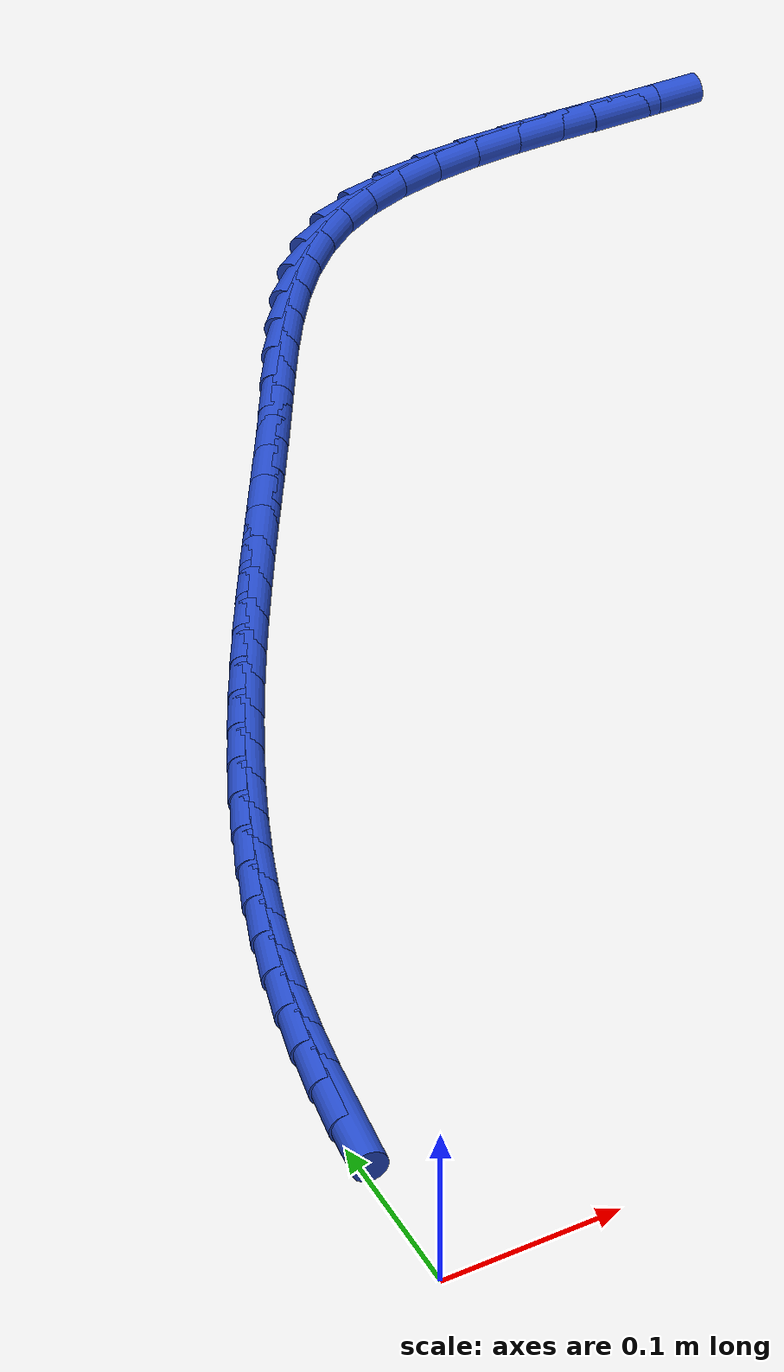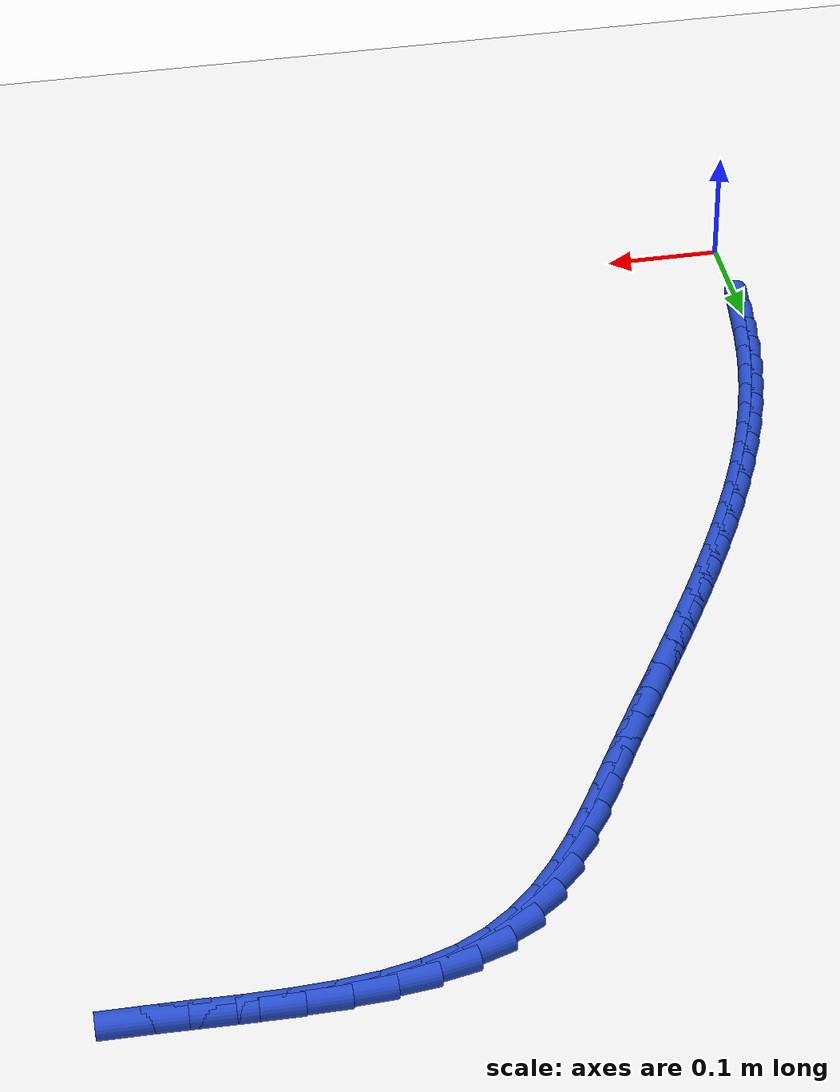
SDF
<sdf version="1.6">
 <world name="default">
  <model name="ground_plane">
   <static>1</static>
   <link name="link">
    <collision name="collision">
     <geometry><plane><normal>0 0 1</normal><size>100 100</size></plane></geometry>
     <surface><friction><ode><mu>100</mu><mu2>50</mu2></ode></friction></surface>
    </collision>
    <visual name="visual">
     <cast_shadows>0</cast_shadows>
     <geometry><plane><normal>0 0 1</normal><size>100 100</size></plane></geometry>
     <material>
      <script><uri>file://media/materials/scripts/gazebo.material</uri><name>Gazebo/WhiteGlow</name></script>
     </material>
    </visual>
   </link>
  </model>
  <model name="line">
   <link name="link_4">
    <pose>0.005877964101562978 0.1147266940156338 0.01 0 1.57 1.4434871327278553</pose>
    <collision name="collision">
     <geometry><cylinder><radius>0.01</radius><length>0.08</length></cylinder></geometry>
    </collision>
    <visual name="visual">
     <material>
      <script><name>Gazebo/Blue</name><uri>file://media/materials/scripts/gazebo.material</uri></script>
     </material>
     <geometry><cylinder><radius>0.01</radius><length>0.08</length></cylinder></geometry>
    </visual>
   </link>
   <link name="link_5">
    <pose>0.009503299858063974 0.14304930302059277 0.01 0 1.57 1.4093212751961135</pose>
    <collision name="collision">
     <geometry><cylinder><radius>0.01</radius><length>0.08</length></cylinder></geometry>
    </collision>
    <visual name="visual">
     <material>
      <script><name>Gazebo/Blue</name><uri>file://media/materials/scripts/gazebo.material</uri></script>
     </material>
     <geometry><cylinder><radius>0.01</radius><length>0.08</length></cylinder></geometry>
    </visual>
   </link>
   <link name="link_6">
    <pose>0.0140723691933614 0.17109876633553636 0.01 0 1.57 1.3730125523633765</pose>
    <collision name="collision">
     <geometry><cylinder><radius>0.01</radius><length>0.08</length></cylinder></geometry>
    </collision>
    <visual name="visual">
     <material>
      <script><name>Gazebo/Blue</name><uri>file://media/materials/scripts/gazebo.material</uri></script>
     </material>
     <geometry><cylinder><radius>0.01</radius><length>0.08</length></cylinder></geometry>
    </visual>
   </link>
   <link name="link_7">
    <pose>0.01962586995063141 0.19881032401524673 0.01 0 1.57 1.3344554220983544</pose>
    <collision name="collision">
     <geometry><cylinder><radius>0.01</radius><length>0.08</length></cylinder></geometry>
    </collision>
    <visual name="visual">
     <material>
      <script><name>Gazebo/Blue</name><uri>file://media/materials/scripts/gazebo.material</uri></script>
     </material>
     <geometry><cylinder><radius>0.01</radius><length>0.08</length></cylinder></geometry>
    </visual>
   </link>
   <link name="link_8">
    <pose>0.026203292380306654 0.22612044573771287 0.01 0 1.57 1.2954669962316583</pose>
    <collision name="collision">
     <geometry><cylinder><radius>0.01</radius><length>0.08</length></cylinder></geometry>
    </collision>
    <visual name="visual">
     <material>
      <script><name>Gazebo/Blue</name><uri>file://media/materials/scripts/gazebo.material</uri></script>
     </material>
     <geometry><cylinder><radius>0.01</radius><length>0.08</length></cylinder></geometry>
    </visual>
   </link>
   <link name="link_9">
    <pose>0.03379988727751685 0.2530106477093877 0.01 0 1.57 1.2586226104264027</pose>
    <collision name="collision">
     <geometry><cylinder><radius>0.01</radius><length>0.08</length></cylinder></geometry>
    </collision>
    <visual name="visual">
     <material>
      <script><name>Gazebo/Blue</name><uri>file://media/materials/scripts/gazebo.material</uri></script>
     </material>
     <geometry><cylinder><radius>0.01</radius><length>0.08</length></cylinder></geometry>
    </visual>
   </link>
   <link name="link_10">
    <pose>0.04235495488791489 0.2795194174082357 0.01 0 1.57 1.224285861590087</pose>
    <collision name="collision">
     <geometry><cylinder><radius>0.01</radius><length>0.08</length></cylinder></geometry>
    </collision>
    <visual name="visual">
     <material>
      <script><name>Gazebo/Blue</name><uri>file://media/materials/scripts/gazebo.material</uri></script>
     </material>
     <geometry><cylinder><radius>0.01</radius><length>0.08</length></cylinder></geometry>
    </visual>
   </link>
   <link name="link_11">
    <pose>0.05180420507439614 0.30568889819536876 0.01 0 1.57 1.1926175697821355</pose>
    <collision name="collision">
     <geometry><cylinder><radius>0.01</radius><length>0.08</length></cylinder></geometry>
    </collision>
    <visual name="visual">
     <material>
      <script><name>Gazebo/Blue</name><uri>file://media/materials/scripts/gazebo.material</uri></script>
     </material>
     <geometry><cylinder><radius>0.01</radius><length>0.08</length></cylinder></geometry>
    </visual>
   </link>
   <link name="link_12">
    <pose>0.06208334769985592 0.33156123343189836 0.01 0 1.57 1.1637336648102972</pose>
    <collision name="collision">
     <geometry><cylinder><radius>0.01</radius><length>0.08</length></cylinder></geometry>
    </collision>
    <visual name="visual">
     <material>
      <script><name>Gazebo/Blue</name><uri>file://media/materials/scripts/gazebo.material</uri></script>
     </material>
     <geometry><cylinder><radius>0.01</radius><length>0.08</length></cylinder></geometry>
    </visual>
   </link>
   <link name="link_13">
    <pose>0.07312809262718964 0.35717856647893653 0.01 0 1.57 1.1377100550163985</pose>
    <collision name="collision">
     <geometry><cylinder><radius>0.01</radius><length>0.08</length></cylinder></geometry>
    </collision>
    <visual name="visual">
     <material>
      <script><name>Gazebo/Blue</name><uri>file://media/materials/scripts/gazebo.material</uri></script>
     </material>
     <geometry><cylinder><radius>0.01</radius><length>0.08</length></cylinder></geometry>
    </visual>
   </link>
   <link name="link_14">
    <pose>0.08487414971929266 0.3825830406975948 0.01 0 1.57 1.1145884544039364</pose>
    <collision name="collision">
     <geometry><cylinder><radius>0.01</radius><length>0.08</length></cylinder></geometry>
    </collision>
    <visual name="visual">
     <material>
      <script><name>Gazebo/Blue</name><uri>file://media/materials/scripts/gazebo.material</uri></script>
     </material>
     <geometry><cylinder><radius>0.01</radius><length>0.08</length></cylinder></geometry>
    </visual>
   </link>
   <link name="link_15">
    <pose>0.09725722883906032 0.4078167994489851 0.01 0 1.57 1.09438252692629</pose>
    <collision name="collision">
     <geometry><cylinder><radius>0.01</radius><length>0.08</length></cylinder></geometry>
    </collision>
    <visual name="visual">
     <material>
      <script><name>Gazebo/Blue</name><uri>file://media/materials/scripts/gazebo.material</uri></script>
     </material>
     <geometry><cylinder><radius>0.01</radius><length>0.08</length></cylinder></geometry>
    </visual>
   </link>
   <link name="link_16">
    <pose>0.11021303984938798 0.43292198609421884 0.01 0 1.57 1.0770838513922167</pose>
    <collision name="collision">
     <geometry><cylinder><radius>0.01</radius><length>0.08</length></cylinder></geometry>
    </collision>
    <visual name="visual">
     <material>
      <script><name>Gazebo/Blue</name><uri>file://media/materials/scripts/gazebo.material</uri></script>
     </material>
     <geometry><cylinder><radius>0.01</radius><length>0.08</length></cylinder></geometry>
    </visual>
   </link>
   <link name="link_17">
    <pose>0.12367729261317098 0.45794074399440804 0.01 0 1.57 1.0626673634009953</pose>
    <collision name="collision">
     <geometry><cylinder><radius>0.01</radius><length>0.08</length></cylinder></geometry>
    </collision>
    <visual name="visual">
     <material>
      <script><name>Gazebo/Blue</name><uri>file://media/materials/scripts/gazebo.material</uri></script>
     </material>
     <geometry><cylinder><radius>0.01</radius><length>0.08</length></cylinder></geometry>
    </visual>
   </link>
   <link name="link_18">
    <pose>0.13758569699330478 0.48291521651066444 0.01 0 1.57 1.051096067980115</pose>
    <collision name="collision">
     <geometry><cylinder><radius>0.01</radius><length>0.08</length></cylinder></geometry>
    </collision>
    <visual name="visual">
     <material>
      <script><name>Gazebo/Blue</name><uri>file://media/materials/scripts/gazebo.material</uri></script>
     </material>
     <geometry><cylinder><radius>0.01</radius><length>0.08</length></cylinder></geometry>
    </visual>
   </link>
   <link name="link_19">
    <pose>0.1518739628526846 0.5078875470040995 0.01 0 1.57 1.0423249261464813</pose>
    <collision name="collision">
     <geometry><cylinder><radius>0.01</radius><length>0.08</length></cylinder></geometry>
    </collision>
    <visual name="visual">
     <material>
      <script><name>Gazebo/Blue</name><uri>file://media/materials/scripts/gazebo.material</uri></script>
     </material>
     <geometry><cylinder><radius>0.01</radius><length>0.08</length></cylinder></geometry>
    </visual>
   </link>
   <link name="link_20">
    <pose>0.16647780005420595 0.5328998788358253 0.01 0 1.57 1.0363038976046708</pose>
    <collision name="collision">
     <geometry><cylinder><radius>0.01</radius><length>0.08</length></cylinder></geometry>
    </collision>
    <visual name="visual">
     <material>
      <script><name>Gazebo/Blue</name><uri>file://media/materials/scripts/gazebo.material</uri></script>
     </material>
     <geometry><cylinder><radius>0.01</radius><length>0.08</length></cylinder></geometry>
    </visual>
   </link>
   <link name="link_21">
    <pose>0.1813329184607641 0.5579943553669534 0.01 0 1.57 1.0329801731039916</pose>
    <collision name="collision">
     <geometry><cylinder><radius>0.01</radius><length>0.08</length></cylinder></geometry>
    </collision>
    <visual name="visual">
     <material>
      <script><name>Gazebo/Blue</name><uri>file://media/materials/scripts/gazebo.material</uri></script>
     </material>
     <geometry><cylinder><radius>0.01</radius><length>0.08</length></cylinder></geometry>
    </visual>
   </link>
   <link name="link_22">
    <pose>0.19637502793525435 0.5832131199585954 0.01 0 1.57 1.032299659222334</pose>
    <collision name="collision">
     <geometry><cylinder><radius>0.01</radius><length>0.08</length></cylinder></geometry>
    </collision>
    <visual name="visual">
     <material>
      <script><name>Gazebo/Blue</name><uri>file://media/materials/scripts/gazebo.material</uri></script>
     </material>
     <geometry><cylinder><radius>0.01</radius><length>0.08</length></cylinder></geometry>
    </visual>
   </link>
   <link name="link_23">
    <pose>0.21153983834057216 0.6085983159718632 0.01 0 1.57 1.0342077918414312</pose>
    <collision name="collision">
     <geometry><cylinder><radius>0.01</radius><length>0.08</length></cylinder></geometry>
    </collision>
    <visual name="visual">
     <material>
      <script><name>Gazebo/Blue</name><uri>file://media/materials/scripts/gazebo.material</uri></script>
     </material>
     <geometry><cylinder><radius>0.01</radius><length>0.08</length></cylinder></geometry>
    </visual>
   </link>
   <link name="link_24">
    <pose>0.2267630595396129 0.6341920867678685 0.01 0 1.57 1.0386497581470888</pose>
    <collision name="collision">
     <geometry><cylinder><radius>0.01</radius><length>0.08</length></cylinder></geometry>
    </collision>
    <visual name="visual">
     <material>
      <script><name>Gazebo/Blue</name><uri>file://media/materials/scripts/gazebo.material</uri></script>
     </material>
     <geometry><cylinder><radius>0.01</radius><length>0.08</length></cylinder></geometry>
    </visual>
   </link>
   <link name="link_25">
    <pose>0.241980401395272 0.6600365757077232 0.01 0 1.57 1.0429313332978936</pose>
    <collision name="collision">
     <geometry><cylinder><radius>0.01</radius><length>0.08</length></cylinder></geometry>
    </collision>
    <visual name="visual">
     <material>
      <script><name>Gazebo/Blue</name><uri>file://media/materials/scripts/gazebo.material</uri></script>
     </material>
     <geometry><cylinder><radius>0.01</radius><length>0.08</length></cylinder></geometry>
    </visual>
   </link>
   <link name="link_26">
    <pose>0.25717833736589857 0.686102722968214 0.01 0 1.57 1.0322560216911314</pose>
    <collision name="collision">
     <geometry><cylinder><radius>0.01</radius><length>0.08</length></cylinder></geometry>
    </collision>
    <visual name="visual">
     <material>
      <script><name>Gazebo/Blue</name><uri>file://media/materials/scripts/gazebo.material</uri></script>
     </material>
     <geometry><cylinder><radius>0.01</radius><length>0.08</length></cylinder></geometry>
    </visual>
   </link>
   <link name="link_27">
    <pose>0.2726280027185645 0.7119621899308509 0.01 0 1.57 1.0010008215164532</pose>
    <collision name="collision">
     <geometry><cylinder><radius>0.01</radius><length>0.08</length></cylinder></geometry>
    </collision>
    <visual name="visual">
     <material>
      <script><name>Gazebo/Blue</name><uri>file://media/materials/scripts/gazebo.material</uri></script>
     </material>
     <geometry><cylinder><radius>0.01</radius><length>0.08</length></cylinder></geometry>
    </visual>
   </link>
   <link name="link_28">
    <pose>0.2886996936329558 0.7370475506513653 0.01 0 1.57 0.9476431186268373</pose>
    <collision name="collision">
     <geometry><cylinder><radius>0.01</radius><length>0.08</length></cylinder></geometry>
    </collision>
    <visual name="visual">
     <material>
      <script><name>Gazebo/Blue</name><uri>file://media/materials/scripts/gazebo.material</uri></script>
     </material>
     <geometry><cylinder><radius>0.01</radius><length>0.08</length></cylinder></geometry>
    </visual>
   </link>
   <link name="link_29">
    <pose>0.30576380753950977 0.7607912371668636 0.01 0 1.57 0.869831654823619</pose>
    <collision name="collision">
     <geometry><cylinder><radius>0.01</radius><length>0.08</length></cylinder></geometry>
    </collision>
    <visual name="visual">
     <material>
      <script><name>Gazebo/Blue</name><uri>file://media/materials/scripts/gazebo.material</uri></script>
     </material>
     <geometry><cylinder><radius>0.01</radius><length>0.08</length></cylinder></geometry>
    </visual>
   </link>
   <link name="link_30">
    <pose>0.32419074186866415 0.7826256815144527 0.01 0 1.57 0.7650931882227393</pose>
    <collision name="collision">
     <geometry><cylinder><radius>0.01</radius><length>0.08</length></cylinder></geometry>
    </collision>
    <visual name="visual">
     <material>
      <script><name>Gazebo/Blue</name><uri>file://media/materials/scripts/gazebo.material</uri></script>
     </material>
     <geometry><cylinder><radius>0.01</radius><length>0.08</length></cylinder></geometry>
    </visual>
   </link>
   <link name="link_31">
    <pose>0.3443508940508568 0.8019833157312395 0.01 0 1.57 0.6323542122007462</pose>
    <collision name="collision">
     <geometry><cylinder><radius>0.01</radius><length>0.08</length></cylinder></geometry>
    </collision>
    <visual name="visual">
     <material>
      <script><name>Gazebo/Blue</name><uri>file://media/materials/scripts/gazebo.material</uri></script>
     </material>
     <geometry><cylinder><radius>0.01</radius><length>0.08</length></cylinder></geometry>
    </visual>
   </link>
   <link name="link_32">
    <pose>0.3666146615165252 0.8182965718543307 0.01 0 1.57 0.474643444710666</pose>
    <collision name="collision">
     <geometry><cylinder><radius>0.01</radius><length>0.08</length></cylinder></geometry>
    </collision>
    <visual name="visual">
     <material>
      <script><name>Gazebo/Blue</name><uri>file://media/materials/scripts/gazebo.material</uri></script>
     </material>
     <geometry><cylinder><radius>0.01</radius><length>0.08</length></cylinder></geometry>
    </visual>
   </link>
   <link name="link_33">
    <pose>0.3913472668551906 0.831004712277912 0.01 0 1.57 0.31815705306391706</pose>
    <collision name="collision">
     <geometry><cylinder><radius>0.01</radius><length>0.08</length></cylinder></geometry>
    </collision>
    <visual name="visual">
     <material>
      <script><name>Gazebo/Blue</name><uri>file://media/materials/scripts/gazebo.material</uri></script>
     </material>
     <geometry><cylinder><radius>0.01</radius><length>0.08</length></cylinder></geometry>
    </visual>
   </link>
   <link name="link_34">
    <pose>0.41858853548119207 0.8399764964443867 0.01 0 1.57 0.19496888457943615</pose>
    <collision name="collision">
     <geometry><cylinder><radius>0.01</radius><length>0.08</length></cylinder></geometry>
    </collision>
    <visual name="visual">
     <material>
      <script><name>Gazebo/Blue</name><uri>file://media/materials/scripts/gazebo.material</uri></script>
     </material>
     <geometry><cylinder><radius>0.01</radius><length>0.08</length></cylinder></geometry>
    </visual>
   </link>
   <link name="link_35">
    <pose>0.4478651638119439 0.8457579711432657 0.01 0 1.57 0.10344504276795878</pose>
    <collision name="collision">
     <geometry><cylinder><radius>0.01</radius><length>0.08</length></cylinder></geometry>
    </collision>
    <visual name="visual">
     <material>
      <script><name>Gazebo/Blue</name><uri>file://media/materials/scripts/gazebo.material</uri></script>
     </material>
     <geometry><cylinder><radius>0.01</radius><length>0.08</length></cylinder></geometry>
    </visual>
   </link>
   <link name="link_36">
    <pose>0.4786586677678103 0.8489548176403252 0.01 0 1.57 0.038289768305461734</pose>
    <collision name="collision">
     <geometry><cylinder><radius>0.01</radius><length>0.08</length></cylinder></geometry>
    </collision>
    <visual name="visual">
     <material>
      <script><name>Gazebo/Blue</name><uri>file://media/materials/scripts/gazebo.material</uri></script>
     </material>
     <geometry><cylinder><radius>0.01</radius><length>0.08</length></cylinder></geometry>
    </visual>
   </link>
   <link name="link_37">
    <pose>0.5104505632691555 0.8501727172013416 0.01 0 1.57 -0.004814261821521192</pose>
    <collision name="collision">
     <geometry><cylinder><radius>0.01</radius><length>0.08</length></cylinder></geometry>
    </collision>
    <visual name="visual">
     <material>
      <script><name>Gazebo/Blue</name><uri>file://media/materials/scripts/gazebo.material</uri></script>
     </material>
     <geometry><cylinder><radius>0.01</radius><length>0.08</length></cylinder></geometry>
    </visual>
   </link>
   <link name="link_38">
    <pose>0.5427223662363431 0.8500173510920903 0.01 0 1.57 -0.028625691763009557</pose>
    <collision name="collision">
     <geometry><cylinder><radius>0.01</radius><length>0.08</length></cylinder></geometry>
    </collision>
    <visual name="visual">
     <material>
      <script><name>Gazebo/Blue</name><uri>file://media/materials/scripts/gazebo.material</uri></script>
     </material>
     <geometry><cylinder><radius>0.01</radius><length>0.08</length></cylinder></geometry>
    </visual>
   </link>
   <link name="link_39">
    <pose>0.5749555925897378 0.8490944005783476 0.01 0 1.57 -0.034234881993086184</pose>
    <collision name="collision">
     <geometry><cylinder><radius>0.01</radius><length>0.08</length></cylinder></geometry>
    </collision>
    <visual name="visual">
     <material>
      <script><name>Gazebo/Blue</name><uri>file://media/materials/scripts/gazebo.material</uri></script>
     </material>
     <geometry><cylinder><radius>0.01</radius><length>0.08</length></cylinder></geometry>
    </visual>
   </link>
   <link name="link_40">
    <pose>0.6066317582497033 0.8480095469258895 0.01 0 1.57 -0.020946691400877338</pose>
    <collision name="collision">
     <geometry><cylinder><radius>0.01</radius><length>0.08</length></cylinder></geometry>
    </collision>
    <visual name="visual">
     <material>
      <script><name>Gazebo/Blue</name><uri>file://media/materials/scripts/gazebo.material</uri></script>
     </material>
     <geometry><cylinder><radius>0.01</radius><length>0.08</length></cylinder></geometry>
    </visual>
   </link>
  </model>
 </world>
</sdf>
